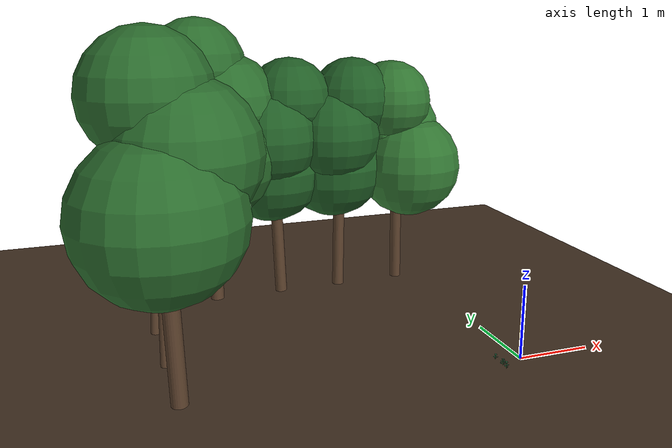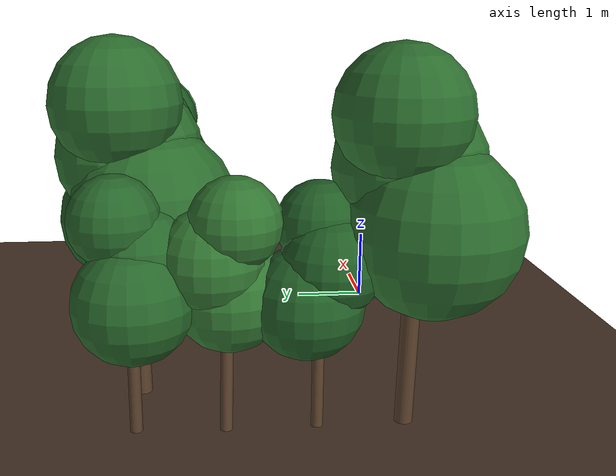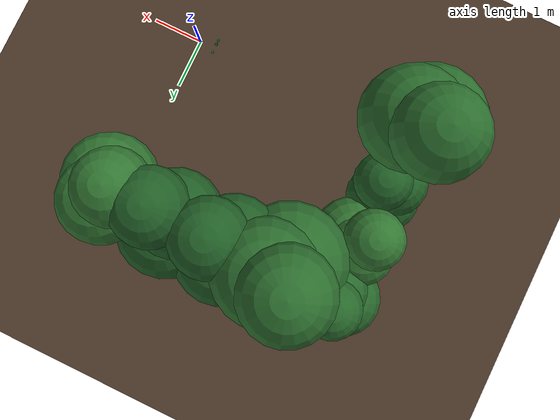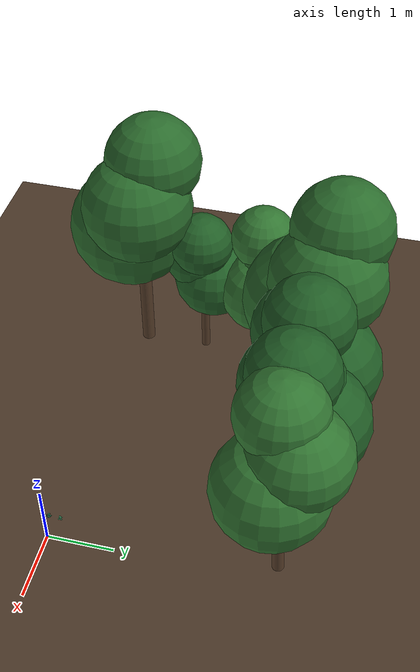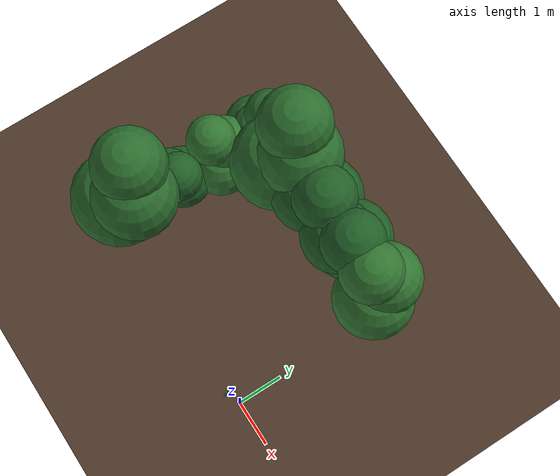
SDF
<sdf version="1.9">
 <world name="jim_field">
  <model name="ground_plane">
   <static>true</static>
   <link name="link">
    <collision name="collision">
     <geometry><plane><normal>0 0 1</normal><size>40 40</size></plane></geometry>
    </collision>
    <visual name="visual">
     <geometry><plane><normal>0 0 1</normal><size>40 40</size></plane></geometry>
     <material>
      <ambient>0.20 0.15 0.11 1</ambient>
      <diffuse>0.30 0.22 0.16 1</diffuse>
      <specular>0.01 0.01 0.01 1</specular>
     </material>
    </visual>
   </link>
  </model>
  <model name="field">
   <static>true</static>
   <pose>0.1837 -0.2516 0 0 0 0</pose>
   <model name="crop_102">
    <static>true</static>
    <pose>-0.4992 0.0810 0 0 0 0</pose>
    <link name="link">
     <visual name="stem">
      <pose>0 0 0.0420 0 0 0</pose>
      <geometry><cylinder><radius>0.0027</radius><length>0.0839</length></cylinder></geometry>
      <material>
       <ambient>0.10 0.22 0.09 1</ambient>
       <diffuse>0.20 0.40 0.16 1</diffuse>
       <specular>0.05 0.06 0.05 1</specular>
      </material>
     </visual>
     <visual name="leaflet_0_0">
      <pose>-0.0034 0.0182 0.0252 0 -0.300 1.7563</pose>
      <geometry><ellipsoid><radii>0.0170 0.0105 0.0016</radii></ellipsoid></geometry>
      <material>
       <ambient>0.088 0.230 0.134 1</ambient>
       <diffuse>0.166 0.440 0.282 1</diffuse>
       <specular>0.05 0.06 0.05 1</specular>
      </material>
     </visual>
     <visual name="leaflet_0_1">
      <pose>0.0034 -0.0182 0.0252 0 -0.300 4.8978</pose>
      <geometry><ellipsoid><radii>0.0170 0.0105 0.0016</radii></ellipsoid></geometry>
      <material>
       <ambient>0.088 0.230 0.134 1</ambient>
       <diffuse>0.166 0.440 0.282 1</diffuse>
       <specular>0.05 0.06 0.05 1</specular>
      </material>
     </visual>
     <visual name="leaflet_1_0">
      <pose>-0.0185 0.0007 0.0425 0 -0.200 3.1063</pose>
      <geometry><ellipsoid><radii>0.0170 0.0105 0.0016</radii></ellipsoid></geometry>
      <material>
       <ambient>0.088 0.230 0.134 1</ambient>
       <diffuse>0.166 0.440 0.282 1</diffuse>
       <specular>0.05 0.06 0.05 1</specular>
      </material>
     </visual>
     <visual name="leaflet_1_1">
      <pose>0.0185 -0.0007 0.0425 0 -0.200 6.2478</pose>
      <geometry><ellipsoid><radii>0.0170 0.0105 0.0016</radii></ellipsoid></geometry>
      <material>
       <ambient>0.088 0.230 0.134 1</ambient>
       <diffuse>0.166 0.440 0.282 1</diffuse>
       <specular>0.05 0.06 0.05 1</specular>
      </material>
     </visual>
     <visual name="leaflet_2_0">
      <pose>-0.0047 -0.0179 0.0599 0 -0.100 4.4563</pose>
      <geometry><ellipsoid><radii>0.0170 0.0105 0.0016</radii></ellipsoid></geometry>
      <material>
       <ambient>0.088 0.230 0.134 1</ambient>
       <diffuse>0.166 0.440 0.282 1</diffuse>
       <specular>0.05 0.06 0.05 1</specular>
      </material>
     </visual>
     <visual name="leaflet_2_1">
      <pose>0.0047 0.0179 0.0599 0 -0.100 7.5978</pose>
      <geometry><ellipsoid><radii>0.0170 0.0105 0.0016</radii></ellipsoid></geometry>
      <material>
       <ambient>0.088 0.230 0.134 1</ambient>
       <diffuse>0.166 0.440 0.282 1</diffuse>
       <specular>0.05 0.06 0.05 1</specular>
      </material>
     </visual>
     <visual name="leaflet_terminal">
      <pose>0 0 0.0879 0 -0.12 1.7563</pose>
      <geometry><ellipsoid><radii>0.0215 0.0140 0.0018</radii></ellipsoid></geometry>
      <material>
       <ambient>0.088 0.230 0.134 1</ambient>
       <diffuse>0.166 0.440 0.282 1</diffuse>
       <specular>0.05 0.06 0.05 1</specular>
      </material>
     </visual>
    </link>
   </model>
   <model name="crop_119">
    <static>true</static>
    <pose>-0.4981 0.1662 0 0 0 0</pose>
    <link name="link">
     <visual name="stem">
      <pose>0 0 0.0406 0 0 0</pose>
      <geometry><cylinder><radius>0.0026</radius><length>0.0812</length></cylinder></geometry>
      <material>
       <ambient>0.10 0.22 0.09 1</ambient>
       <diffuse>0.20 0.40 0.16 1</diffuse>
       <specular>0.05 0.06 0.05 1</specular>
      </material>
     </visual>
     <visual name="leaflet_0_0">
      <pose>0.0116 -0.0142 0.0244 0 -0.300 5.3983</pose>
      <geometry><ellipsoid><radii>0.0170 0.0105 0.0016</radii></ellipsoid></geometry>
      <material>
       <ambient>0.072 0.204 0.113 1</ambient>
       <diffuse>0.134 0.387 0.245 1</diffuse>
       <specular>0.05 0.06 0.05 1</specular>
      </material>
     </visual>
     <visual name="leaflet_0_1">
      <pose>-0.0116 0.0142 0.0244 0 -0.300 8.5399</pose>
      <geometry><ellipsoid><radii>0.0170 0.0105 0.0016</radii></ellipsoid></geometry>
      <material>
       <ambient>0.072 0.204 0.113 1</ambient>
       <diffuse>0.134 0.387 0.245 1</diffuse>
       <specular>0.05 0.06 0.05 1</specular>
      </material>
     </visual>
     <visual name="leaflet_1_0">
      <pose>0.0164 0.0082 0.0369 0 -0.200 6.7483</pose>
      <geometry><ellipsoid><radii>0.0170 0.0105 0.0016</radii></ellipsoid></geometry>
      <material>
       <ambient>0.072 0.204 0.113 1</ambient>
       <diffuse>0.134 0.387 0.245 1</diffuse>
       <specular>0.05 0.06 0.05 1</specular>
      </material>
     </visual>
     <visual name="leaflet_1_1">
      <pose>-0.0164 -0.0082 0.0369 0 -0.200 9.8899</pose>
      <geometry><ellipsoid><radii>0.0170 0.0105 0.0016</radii></ellipsoid></geometry>
      <material>
       <ambient>0.072 0.204 0.113 1</ambient>
       <diffuse>0.134 0.387 0.245 1</diffuse>
       <specular>0.05 0.06 0.05 1</specular>
      </material>
     </visual>
     <visual name="leaflet_2_0">
      <pose>-0.0044 0.0178 0.0495 0 -0.100 8.0983</pose>
      <geometry><ellipsoid><radii>0.0170 0.0105 0.0016</radii></ellipsoid></geometry>
      <material>
       <ambient>0.072 0.204 0.113 1</ambient>
       <diffuse>0.134 0.387 0.245 1</diffuse>
       <specular>0.05 0.06 0.05 1</specular>
      </material>
     </visual>
     <visual name="leaflet_2_1">
      <pose>0.0044 -0.0178 0.0495 0 -0.100 11.2399</pose>
      <geometry><ellipsoid><radii>0.0170 0.0105 0.0016</radii></ellipsoid></geometry>
      <material>
       <ambient>0.072 0.204 0.113 1</ambient>
       <diffuse>0.134 0.387 0.245 1</diffuse>
       <specular>0.05 0.06 0.05 1</specular>
      </material>
     </visual>
     <visual name="leaflet_3_0">
      <pose>-0.0183 -0.0004 0.0621 0 0.000 9.4483</pose>
      <geometry><ellipsoid><radii>0.0170 0.0105 0.0016</radii></ellipsoid></geometry>
      <material>
       <ambient>0.072 0.204 0.113 1</ambient>
       <diffuse>0.134 0.387 0.245 1</diffuse>
       <specular>0.05 0.06 0.05 1</specular>
      </material>
     </visual>
     <visual name="leaflet_3_1">
      <pose>0.0183 0.0004 0.0621 0 0.000 12.5899</pose>
      <geometry><ellipsoid><radii>0.0170 0.0105 0.0016</radii></ellipsoid></geometry>
      <material>
       <ambient>0.072 0.204 0.113 1</ambient>
       <diffuse>0.134 0.387 0.245 1</diffuse>
       <specular>0.05 0.06 0.05 1</specular>
      </material>
     </visual>
     <visual name="leaflet_terminal">
      <pose>0 0 0.0852 0 -0.12 5.3983</pose>
      <geometry><ellipsoid><radii>0.0215 0.0140 0.0018</radii></ellipsoid></geometry>
      <material>
       <ambient>0.072 0.204 0.113 1</ambient>
       <diffuse>0.134 0.387 0.245 1</diffuse>
       <specular>0.05 0.06 0.05 1</specular>
      </material>
     </visual>
    </link>
   </model>
   <model name="crop_153">
    <static>true</static>
    <pose>-0.4996 0.3395 0 0 0 0</pose>
    <link name="link">
     <visual name="stem">
      <pose>0 0 0.0338 0 0 0</pose>
      <geometry><cylinder><radius>0.0025</radius><length>0.0676</length></cylinder></geometry>
      <material>
       <ambient>0.10 0.22 0.09 1</ambient>
       <diffuse>0.20 0.40 0.16 1</diffuse>
       <specular>0.05 0.06 0.05 1</specular>
      </material>
     </visual>
     <visual name="leaflet_0_0">
      <pose>-0.0088 -0.0152 0.0203 0 -0.300 4.1878</pose>
      <geometry><ellipsoid><radii>0.0170 0.0105 0.0016</radii></ellipsoid></geometry>
      <material>
       <ambient>0.097 0.245 0.146 1</ambient>
       <diffuse>0.184 0.470 0.303 1</diffuse>
       <specular>0.05 0.06 0.05 1</specular>
      </material>
     </visual>
     <visual name="leaflet_0_1">
      <pose>0.0088 0.0152 0.0203 0 -0.300 7.3294</pose>
      <geometry><ellipsoid><radii>0.0170 0.0105 0.0016</radii></ellipsoid></geometry>
      <material>
       <ambient>0.097 0.245 0.146 1</ambient>
       <diffuse>0.184 0.470 0.303 1</diffuse>
       <specular>0.05 0.06 0.05 1</specular>
      </material>
     </visual>
     <visual name="leaflet_1_0">
      <pose>0.0129 -0.0119 0.0343 0 -0.200 5.5378</pose>
      <geometry><ellipsoid><radii>0.0170 0.0105 0.0016</radii></ellipsoid></geometry>
      <material>
       <ambient>0.097 0.245 0.146 1</ambient>
       <diffuse>0.184 0.470 0.303 1</diffuse>
       <specular>0.05 0.06 0.05 1</specular>
      </material>
     </visual>
     <visual name="leaflet_1_1">
      <pose>-0.0129 0.0119 0.0343 0 -0.200 8.6794</pose>
      <geometry><ellipsoid><radii>0.0170 0.0105 0.0016</radii></ellipsoid></geometry>
      <material>
       <ambient>0.097 0.245 0.146 1</ambient>
       <diffuse>0.184 0.470 0.303 1</diffuse>
       <specular>0.05 0.06 0.05 1</specular>
      </material>
     </visual>
     <visual name="leaflet_2_0">
      <pose>0.0145 0.0100 0.0482 0 -0.100 6.8878</pose>
      <geometry><ellipsoid><radii>0.0170 0.0105 0.0016</radii></ellipsoid></geometry>
      <material>
       <ambient>0.097 0.245 0.146 1</ambient>
       <diffuse>0.184 0.470 0.303 1</diffuse>
       <specular>0.05 0.06 0.05 1</specular>
      </material>
     </visual>
     <visual name="leaflet_2_1">
      <pose>-0.0145 -0.0100 0.0482 0 -0.100 10.0294</pose>
      <geometry><ellipsoid><radii>0.0170 0.0105 0.0016</radii></ellipsoid></geometry>
      <material>
       <ambient>0.097 0.245 0.146 1</ambient>
       <diffuse>0.184 0.470 0.303 1</diffuse>
       <specular>0.05 0.06 0.05 1</specular>
      </material>
     </visual>
     <visual name="leaflet_terminal">
      <pose>0 0 0.0716 0 -0.12 4.1878</pose>
      <geometry><ellipsoid><radii>0.0215 0.0140 0.0018</radii></ellipsoid></geometry>
      <material>
       <ambient>0.097 0.245 0.146 1</ambient>
       <diffuse>0.184 0.470 0.303 1</diffuse>
       <specular>0.05 0.06 0.05 1</specular>
      </material>
     </visual>
    </link>
   </model>
   <model name="tree_0">
    <static>true</static>
    <pose>-4.5500 3.5500 0 0 0 0</pose>
    <link name="link">
     <visual name="trunk">
      <pose>0 0 0.6352 0.0033 -0.0270 0</pose>
      <geometry><cylinder><radius>0.0706</radius><length>1.2703</length></cylinder></geometry>
      <material>
       <ambient>0.16 0.11 0.07 1</ambient>
       <diffuse>0.34 0.24 0.16 1</diffuse>
       <specular>0.03 0.03 0.03 1</specular>
      </material>
     </visual>
     <visual name="foliage_0">
      <pose>-0.1518 -0.0325 1.5639 0 0 0</pose>
      <geometry><sphere><radius>0.6634</radius></sphere></geometry>
      <material>
       <ambient>0.072 0.204 0.077 1</ambient>
       <diffuse>0.156 0.408 0.169 1</diffuse>
       <specular>0.02 0.03 0.02 1</specular>
      </material>
     </visual>
     <visual name="foliage_1">
      <pose>0.1047 -0.1147 1.9874 0 0 0</pose>
      <geometry><sphere><radius>0.5858</radius></sphere></geometry>
      <material>
       <ambient>0.072 0.204 0.077 1</ambient>
       <diffuse>0.156 0.408 0.169 1</diffuse>
       <specular>0.02 0.03 0.02 1</specular>
      </material>
     </visual>
     <visual name="foliage_2">
      <pose>0.0461 0.1483 2.4108 0 0 0</pose>
      <geometry><sphere><radius>0.5081</radius></sphere></geometry>
      <material>
       <ambient>0.072 0.204 0.077 1</ambient>
       <diffuse>0.156 0.408 0.169 1</diffuse>
       <specular>0.02 0.03 0.02 1</specular>
      </material>
     </visual>
    </link>
   </model>
   <model name="tree_1">
    <static>true</static>
    <pose>-3.5389 3.5500 0 0 0 0</pose>
    <link name="link">
     <visual name="trunk">
      <pose>0 0 0.9383 -0.0146 -0.0103 0</pose>
      <geometry><cylinder><radius>0.1043</radius><length>1.8766</length></cylinder></geometry>
      <material>
       <ambient>0.16 0.11 0.07 1</ambient>
       <diffuse>0.34 0.24 0.16 1</diffuse>
       <specular>0.03 0.03 0.03 1</specular>
      </material>
     </visual>
     <visual name="foliage_0">
      <pose>-0.0590 -0.2216 2.3102 0 0 0</pose>
      <geometry><sphere><radius>0.9800</radius></sphere></geometry>
      <material>
       <ambient>0.080 0.215 0.082 1</ambient>
       <diffuse>0.174 0.434 0.182 1</diffuse>
       <specular>0.02 0.03 0.02 1</specular>
      </material>
     </visual>
     <visual name="foliage_1">
      <pose>0.2211 0.0610 2.9358 0 0 0</pose>
      <geometry><sphere><radius>0.8653</radius></sphere></geometry>
      <material>
       <ambient>0.080 0.215 0.082 1</ambient>
       <diffuse>0.174 0.434 0.182 1</diffuse>
       <specular>0.02 0.03 0.02 1</specular>
      </material>
     </visual>
     <visual name="foliage_2">
      <pose>-0.1643 0.1601 3.5613 0 0 0</pose>
      <geometry><sphere><radius>0.7506</radius></sphere></geometry>
      <material>
       <ambient>0.080 0.215 0.082 1</ambient>
       <diffuse>0.174 0.434 0.182 1</diffuse>
       <specular>0.02 0.03 0.02 1</specular>
      </material>
     </visual>
    </link>
   </model>
   <model name="tree_2">
    <static>true</static>
    <pose>-2.5278 3.5500 0 0 0 0</pose>
    <link name="link">
     <visual name="trunk">
      <pose>0 0 0.8079 -0.0040 -0.0422 0</pose>
      <geometry><cylinder><radius>0.0898</radius><length>1.6157</length></cylinder></geometry>
      <material>
       <ambient>0.16 0.11 0.07 1</ambient>
       <diffuse>0.34 0.24 0.16 1</diffuse>
       <specular>0.03 0.03 0.03 1</specular>
      </material>
     </visual>
     <visual name="foliage_0">
      <pose>-0.0598 0.1882 1.9892 0 0 0</pose>
      <geometry><sphere><radius>0.8438</radius></sphere></geometry>
      <material>
       <ambient>0.063 0.189 0.069 1</ambient>
       <diffuse>0.131 0.374 0.152 1</diffuse>
       <specular>0.02 0.03 0.02 1</specular>
      </material>
     </visual>
     <visual name="foliage_1">
      <pose>-0.1323 -0.1466 2.5277 0 0 0</pose>
      <geometry><sphere><radius>0.7450</radius></sphere></geometry>
      <material>
       <ambient>0.063 0.189 0.069 1</ambient>
       <diffuse>0.131 0.374 0.152 1</diffuse>
       <specular>0.02 0.03 0.02 1</specular>
      </material>
     </visual>
     <visual name="foliage_2">
      <pose>0.1934 -0.0402 3.0663 0 0 0</pose>
      <geometry><sphere><radius>0.6463</radius></sphere></geometry>
      <material>
       <ambient>0.063 0.189 0.069 1</ambient>
       <diffuse>0.131 0.374 0.152 1</diffuse>
       <specular>0.02 0.03 0.02 1</specular>
      </material>
     </visual>
    </link>
   </model>
   <model name="tree_3">
    <static>true</static>
    <pose>-1.5167 3.5500 0 0 0 0</pose>
    <link name="link">
     <visual name="trunk">
      <pose>0 0 0.8040 -0.0096 0.0140 0</pose>
      <geometry><cylinder><radius>0.0893</radius><length>1.6079</length></cylinder></geometry>
      <material>
       <ambient>0.16 0.11 0.07 1</ambient>
       <diffuse>0.34 0.24 0.16 1</diffuse>
       <specular>0.03 0.03 0.03 1</specular>
      </material>
     </visual>
     <visual name="foliage_0">
      <pose>-0.0325 0.1938 1.9796 0 0 0</pose>
      <geometry><sphere><radius>0.8397</radius></sphere></geometry>
      <material>
       <ambient>0.062 0.187 0.069 1</ambient>
       <diffuse>0.129 0.371 0.150 1</diffuse>
       <specular>0.02 0.03 0.02 1</specular>
      </material>
     </visual>
     <visual name="foliage_1">
      <pose>-0.1509 -0.1259 2.5155 0 0 0</pose>
      <geometry><sphere><radius>0.7414</radius></sphere></geometry>
      <material>
       <ambient>0.062 0.187 0.069 1</ambient>
       <diffuse>0.129 0.371 0.150 1</diffuse>
       <specular>0.02 0.03 0.02 1</specular>
      </material>
     </visual>
     <visual name="foliage_2">
      <pose>0.1849 -0.0667 3.0515 0 0 0</pose>
      <geometry><sphere><radius>0.6432</radius></sphere></geometry>
      <material>
       <ambient>0.062 0.187 0.069 1</ambient>
       <diffuse>0.129 0.371 0.150 1</diffuse>
       <specular>0.02 0.03 0.02 1</specular>
      </material>
     </visual>
    </link>
   </model>
   <model name="tree_4">
    <static>true</static>
    <pose>-0.5056 3.5500 0 0 0 0</pose>
    <link name="link">
     <visual name="trunk">
      <pose>0 0 0.7903 0.0466 -0.0328 0</pose>
      <geometry><cylinder><radius>0.0878</radius><length>1.5807</length></cylinder></geometry>
      <material>
       <ambient>0.16 0.11 0.07 1</ambient>
       <diffuse>0.34 0.24 0.16 1</diffuse>
       <specular>0.03 0.03 0.03 1</specular>
      </material>
     </visual>
     <visual name="foliage_0">
      <pose>0.1597 -0.1087 1.9460 0 0 0</pose>
      <geometry><sphere><radius>0.8255</radius></sphere></geometry>
      <material>
       <ambient>0.088 0.227 0.088 1</ambient>
       <diffuse>0.195 0.463 0.196 1</diffuse>
       <specular>0.02 0.03 0.02 1</specular>
      </material>
     </visual>
     <visual name="foliage_1">
      <pose>0.0132 0.1927 2.4729 0 0 0</pose>
      <geometry><sphere><radius>0.7289</radius></sphere></geometry>
      <material>
       <ambient>0.088 0.227 0.088 1</ambient>
       <diffuse>0.195 0.463 0.196 1</diffuse>
       <specular>0.02 0.03 0.02 1</specular>
      </material>
     </visual>
     <visual name="foliage_2">
      <pose>-0.1730 -0.0859 2.9997 0 0 0</pose>
      <geometry><sphere><radius>0.6323</radius></sphere></geometry>
      <material>
       <ambient>0.088 0.227 0.088 1</ambient>
       <diffuse>0.195 0.463 0.196 1</diffuse>
       <specular>0.02 0.03 0.02 1</specular>
      </material>
     </visual>
    </link>
   </model>
   <model name="tree_29">
    <static>true</static>
    <pose>-4.5500 0.5071 0 0 0 0</pose>
    <link name="link">
     <visual name="trunk">
      <pose>0 0 0.9315 0.0162 -0.0371 0</pose>
      <geometry><cylinder><radius>0.1035</radius><length>1.8631</length></cylinder></geometry>
      <material>
       <ambient>0.16 0.11 0.07 1</ambient>
       <diffuse>0.34 0.24 0.16 1</diffuse>
       <specular>0.03 0.03 0.03 1</specular>
      </material>
     </visual>
     <visual name="foliage_0">
      <pose>-0.1010 -0.2041 2.2936 0 0 0</pose>
      <geometry><sphere><radius>0.9729</radius></sphere></geometry>
      <material>
       <ambient>0.078 0.213 0.081 1</ambient>
       <diffuse>0.171 0.429 0.180 1</diffuse>
       <specular>0.02 0.03 0.02 1</specular>
      </material>
     </visual>
     <visual name="foliage_1">
      <pose>0.2272 0.0159 2.9147 0 0 0</pose>
      <geometry><sphere><radius>0.8591</radius></sphere></geometry>
      <material>
       <ambient>0.078 0.213 0.081 1</ambient>
       <diffuse>0.171 0.429 0.180 1</diffuse>
       <specular>0.02 0.03 0.02 1</specular>
      </material>
     </visual>
     <visual name="foliage_2">
      <pose>-0.1284 0.1881 3.5357 0 0 0</pose>
      <geometry><sphere><radius>0.7452</radius></sphere></geometry>
      <material>
       <ambient>0.078 0.213 0.081 1</ambient>
       <diffuse>0.171 0.429 0.180 1</diffuse>
       <specular>0.02 0.03 0.02 1</specular>
      </material>
     </visual>
    </link>
   </model>
   <model name="tree_30">
    <static>true</static>
    <pose>-4.5500 1.5214 0 0 0 0</pose>
    <link name="link">
     <visual name="trunk">
      <pose>0 0 0.6102 0.0059 0.0143 0</pose>
      <geometry><cylinder><radius>0.0678</radius><length>1.2203</length></cylinder></geometry>
      <material>
       <ambient>0.16 0.11 0.07 1</ambient>
       <diffuse>0.34 0.24 0.16 1</diffuse>
       <specular>0.03 0.03 0.03 1</specular>
      </material>
     </visual>
     <visual name="foliage_0">
      <pose>-0.0581 0.1374 1.5023 0 0 0</pose>
      <geometry><sphere><radius>0.6373</radius></sphere></geometry>
      <material>
       <ambient>0.063 0.190 0.070 1</ambient>
       <diffuse>0.133 0.376 0.153 1</diffuse>
       <specular>0.02 0.03 0.02 1</specular>
      </material>
     </visual>
     <visual name="foliage_1">
      <pose>-0.0893 -0.1195 1.9091 0 0 0</pose>
      <geometry><sphere><radius>0.5627</radius></sphere></geometry>
      <material>
       <ambient>0.063 0.190 0.070 1</ambient>
       <diffuse>0.133 0.376 0.153 1</diffuse>
       <specular>0.02 0.03 0.02 1</specular>
      </material>
     </visual>
     <visual name="foliage_2">
      <pose>0.1482 -0.0167 2.3159 0 0 0</pose>
      <geometry><sphere><radius>0.4881</radius></sphere></geometry>
      <material>
       <ambient>0.063 0.190 0.070 1</ambient>
       <diffuse>0.133 0.376 0.153 1</diffuse>
       <specular>0.02 0.03 0.02 1</specular>
      </material>
     </visual>
    </link>
   </model>
   <model name="tree_31">
    <static>true</static>
    <pose>-4.5500 2.5357 0 0 0 0</pose>
    <link name="link">
     <visual name="trunk">
      <pose>0 0 0.6344 0.0203 0.0447 0</pose>
      <geometry><cylinder><radius>0.0705</radius><length>1.2688</length></cylinder></geometry>
      <material>
       <ambient>0.16 0.11 0.07 1</ambient>
       <diffuse>0.34 0.24 0.16 1</diffuse>
       <specular>0.03 0.03 0.03 1</specular>
      </material>
     </visual>
     <visual name="foliage_0">
      <pose>0.1481 -0.0459 1.5620 0 0 0</pose>
      <geometry><sphere><radius>0.6626</radius></sphere></geometry>
      <material>
       <ambient>0.090 0.230 0.090 1</ambient>
       <diffuse>0.200 0.470 0.200 1</diffuse>
       <specular>0.02 0.03 0.02 1</specular>
      </material>
     </visual>
     <visual name="foliage_1">
      <pose>-0.0352 0.1510 1.9849 0 0 0</pose>
      <geometry><sphere><radius>0.5850</radius></sphere></geometry>
      <material>
       <ambient>0.090 0.230 0.090 1</ambient>
       <diffuse>0.200 0.470 0.200 1</diffuse>
       <specular>0.02 0.03 0.02 1</specular>
      </material>
     </visual>
     <visual name="foliage_2">
      <pose>-0.1126 -0.1066 2.4078 0 0 0</pose>
      <geometry><sphere><radius>0.5075</radius></sphere></geometry>
      <material>
       <ambient>0.090 0.230 0.090 1</ambient>
       <diffuse>0.200 0.470 0.200 1</diffuse>
       <specular>0.02 0.03 0.02 1</specular>
      </material>
     </visual>
    </link>
   </model>
  </model>
 </world>
</sdf>
